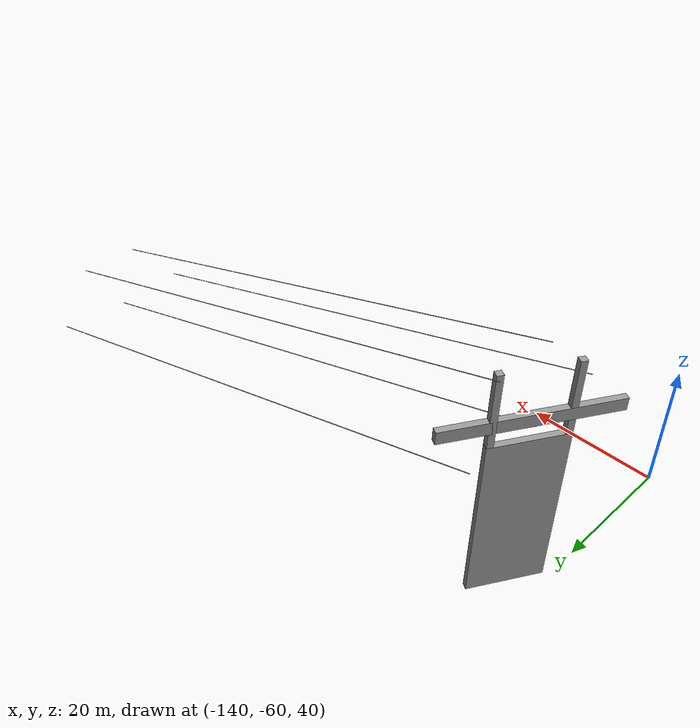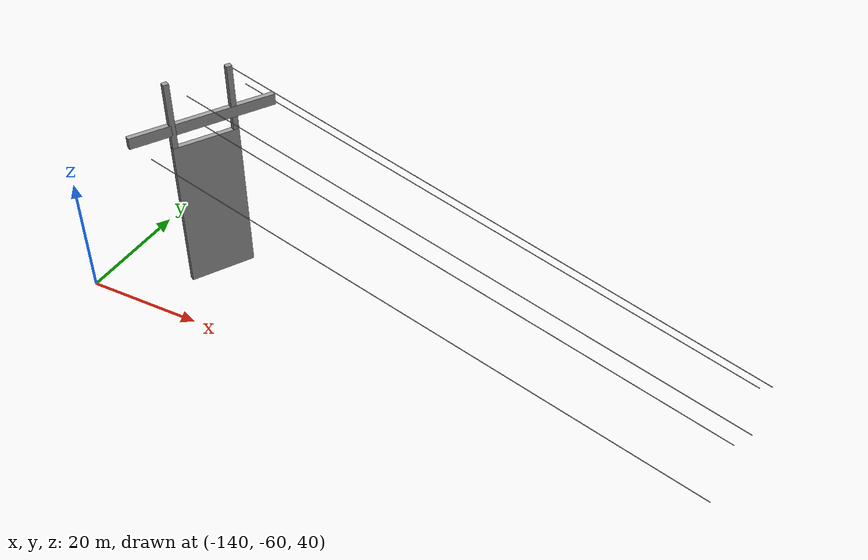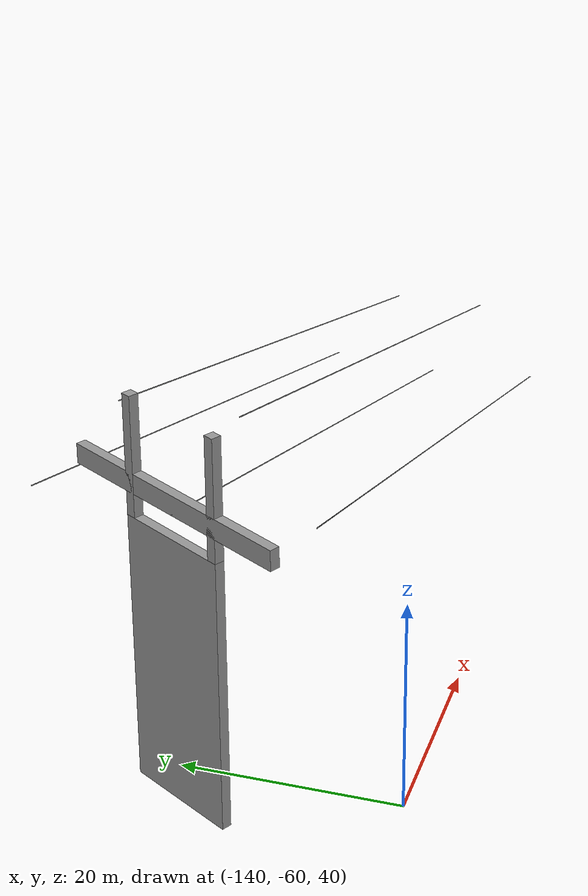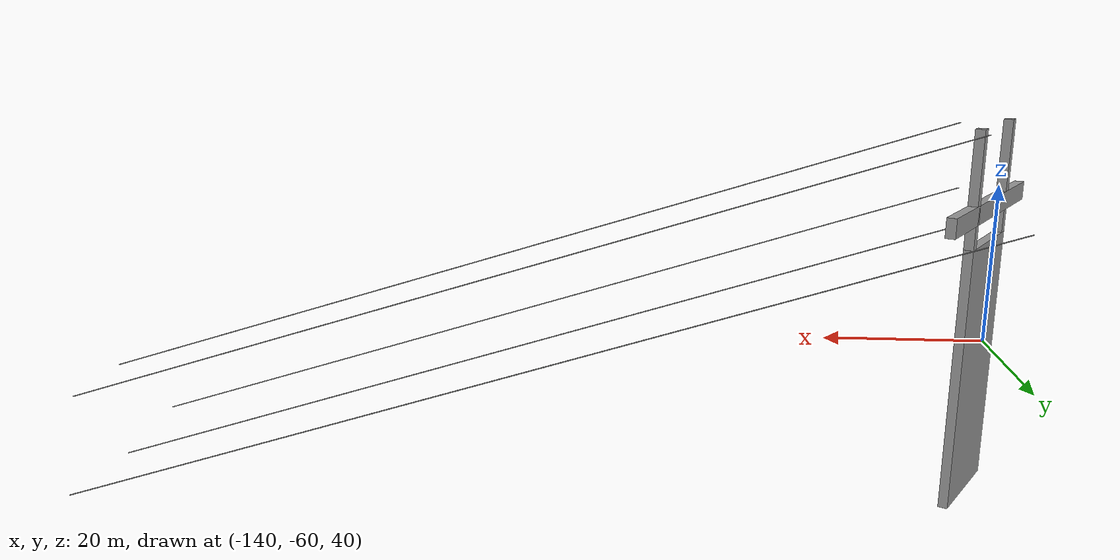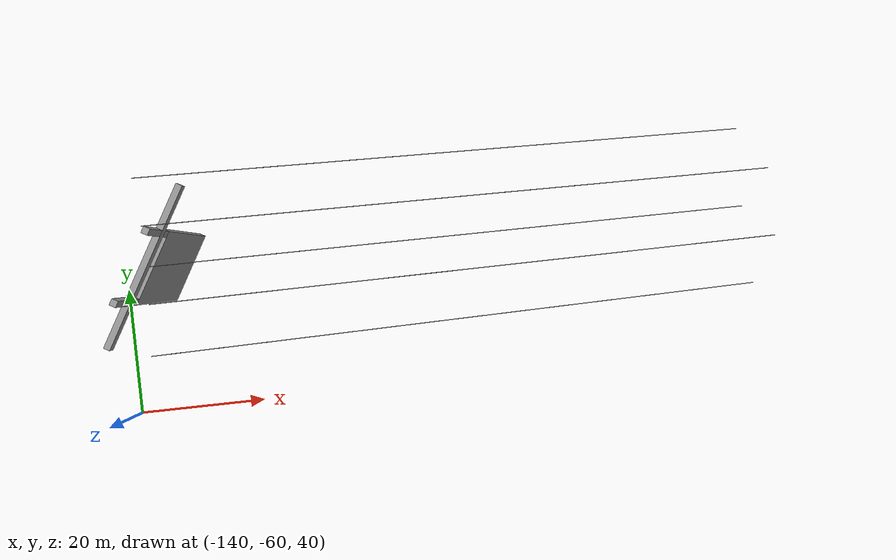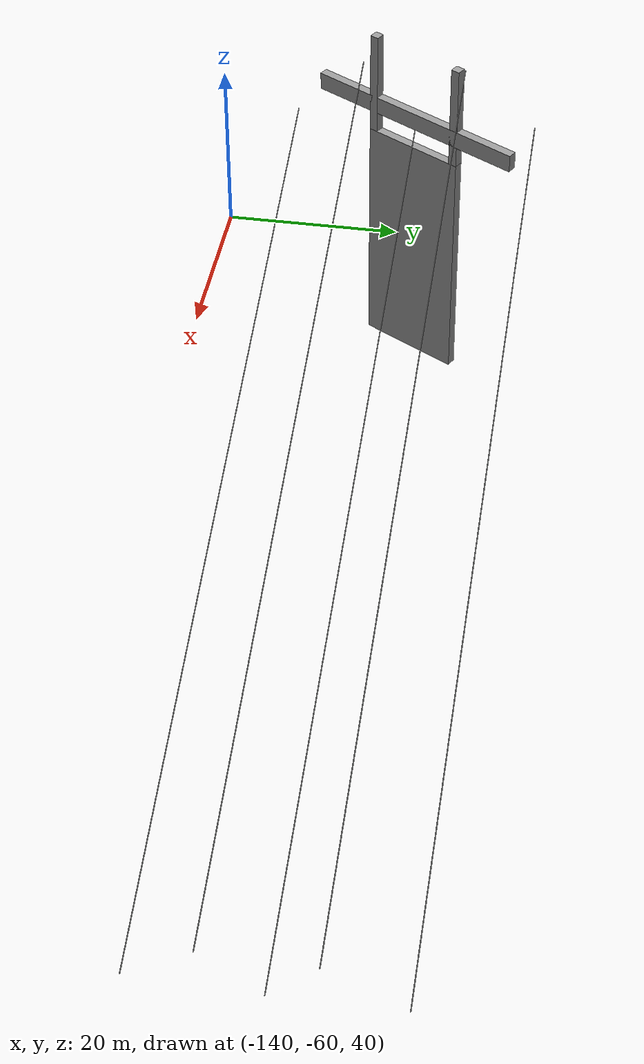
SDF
<sdf version="1.6">
 <world name="vrc_task_1">
  <model name="v4uav_simple_circuit_line_2">
   <link name="link">
    <pose>0 0 0 1.5708 -0 0</pose>
    <inertial>
     <mass>1</mass>
     <pose>0 0 0 1.5708 -0 0</pose>
     <inertia><ixx>1</ixx><ixy>0</ixy><ixz>0</ixz><iyy>1</iyy><iyz>0</iyz><izz>1</izz></inertia>
    </inertial>
    <visual name="ModelPreview_1::link::visual_1">
     <cast_shadows>0</cast_shadows>
     <geometry><cylinder><radius>0.05</radius><length>100</length></cylinder></geometry>
     <material>
      <shader type="pixel"><normal_map>__default__</normal_map></shader>
      <script><name>ModelPreview_33::link::visual_MATERIAL_</name><uri>__default__</uri></script>
      <ambient>0 0 0 1</ambient>
      <diffuse>0 0 0 1</diffuse>
      <specular>0 0 0 1</specular>
      <emissive>0 0 0 1</emissive>
     </material>
     <pose>-5.5 40 0 0 -0 0</pose>
    </visual>
    <visual name="visual">
     <cast_shadows>0</cast_shadows>
     <geometry><cylinder><radius>0.05</radius><length>100</length></cylinder></geometry>
     <material>
      <shader type="pixel"><normal_map>__default__</normal_map></shader>
      <script><name>ModelPreview_33::link::visual_MATERIAL_</name><uri>__default__</uri></script>
      <ambient>0 0 0 1</ambient>
      <diffuse>0 0 0 1</diffuse>
      <specular>0 0 0 1</specular>
      <emissive>0 0 0 1</emissive>
     </material>
     <pose>5.5 40 0 0 -0 0</pose>
    </visual>
    <visual name="ModelPreview_1::link::visual_4">
     <cast_shadows>0</cast_shadows>
     <geometry><cylinder><radius>0.05</radius><length>100</length></cylinder></geometry>
     <material>
      <shader type="pixel"><normal_map>__default__</normal_map></shader>
      <script><name>ModelPreview_33::link::visual_MATERIAL_</name><uri>__default__</uri></script>
      <ambient>0 0 0 1</ambient>
      <diffuse>0 0 0 1</diffuse>
      <specular>0 0 0 1</specular>
      <emissive>0 0 0 1</emissive>
     </material>
     <pose>0 30.64 0 0 -0 0</pose>
    </visual>
    <visual name="ModelPreview_1::link::visual_3">
     <cast_shadows>0</cast_shadows>
     <geometry><cylinder><radius>0.05</radius><length>100</length></cylinder></geometry>
     <material>
      <shader type="pixel"><normal_map>__default__</normal_map></shader>
      <script><name>ModelPreview_33::link::visual_MATERIAL_</name><uri>__default__</uri></script>
      <ambient>0 0 0 1</ambient>
      <diffuse>0 0 0 1</diffuse>
      <specular>0 0 0 1</specular>
      <emissive>0 0 0 1</emissive>
     </material>
     <pose>-13.1 31.42 0 0 -0 0</pose>
    </visual>
    <visual name="ModelPreview_1::link::visual_2">
     <cast_shadows>0</cast_shadows>
     <geometry><cylinder><radius>0.05</radius><length>100</length></cylinder></geometry>
     <material>
      <shader type="pixel"><normal_map>__default__</normal_map></shader>
      <script><name>ModelPreview_33::link::visual_MATERIAL_</name><uri>__default__</uri></script>
      <ambient>0 0 0 1</ambient>
      <diffuse>0 0 0 1</diffuse>
      <specular>0 0 0 1</specular>
      <emissive>0 0 0 1</emissive>
     </material>
     <pose>13.1 31.42 0 0 -0 0</pose>
    </visual>
   </link>
   <static>1</static>
   <pose>-94 -37 16.5 0.3 -1e-06 1.5708</pose>
  </model>
  <model name="v4uav_simple_circuit_tower_6">
   <link name="link">
    <inertial>
     <mass>1</mass>
     <inertia>
      <ixx>0.166667</ixx>
      <ixy>0</ixy>
      <ixz>0</ixz>
      <iyy>0.166667</iyy>
      <iyz>0</iyz>
      <izz>0.166667</izz>
     </inertia>
    </inertial>
    <pose>0 0 14 0 -0 0</pose>
    <visual name="ModelPreview_4::link::visual_3">
     <geometry><box><size>1 1 12</size></box></geometry>
     <material>
      <script><name>Gazebo/Grey</name><uri>file://media/materials/scripts/gazebo.material</uri></script>
      <shader type="pixel"><normal_map>__default__</normal_map></shader>
      <ambient>0.3 0.3 0.3 1</ambient>
      <diffuse>0.7 0.7 0.7 1</diffuse>
      <specular>0.01 0.01 0.01 1</specular>
      <emissive>0 0 0 1</emissive>
     </material>
     <pose>0 -5.5 20 0 -0 0</pose>
    </visual>
    <visual name="ModelPreview_4::link::visual_1">
     <geometry><box><size>1 26.2 2</size></box></geometry>
     <material>
      <script><name>Gazebo/Grey</name><uri>file://media/materials/scripts/gazebo.material</uri></script>
      <shader type="pixel"><normal_map>__default__</normal_map></shader>
      <ambient>0.3 0.3 0.3 1</ambient>
      <diffuse>0.7 0.7 0.7 1</diffuse>
      <specular>0.01 0.01 0.01 1</specular>
      <emissive>0 0 0 1</emissive>
     </material>
     <pose>0 0 17.42 0 -0 0</pose>
    </visual>
    <visual name="ModelPreview_4::link::visual_2">
     <geometry><box><size>1 1 12</size></box></geometry>
     <material>
      <script><name>Gazebo/Grey</name><uri>file://media/materials/scripts/gazebo.material</uri></script>
      <shader type="pixel"><normal_map>__default__</normal_map></shader>
      <ambient>0.3 0.3 0.3 1</ambient>
      <diffuse>0.7 0.7 0.7 1</diffuse>
      <specular>0.01 0.01 0.01 1</specular>
      <emissive>0 0 0 1</emissive>
     </material>
     <pose>0 5.5 20 0 -0 0</pose>
    </visual>
    <visual name="visual">
     <geometry><box><size>1 12 28</size></box></geometry>
     <material>
      <script><name>Gazebo/Grey</name><uri>file://media/materials/scripts/gazebo.material</uri></script>
      <shader type="pixel"><normal_map>__default__</normal_map></shader>
      <ambient>0.3 0.3 0.3 1</ambient>
      <diffuse>0.7 0.7 0.7 1</diffuse>
      <specular>0.01 0.01 0.01 1</specular>
      <emissive>0 0 0 1</emissive>
     </material>
    </visual>
    <collision name="collision">
     <geometry><box><size>1 1 1</size></box></geometry>
     <surface>
      <friction>
       <ode><mu>1</mu><mu2>1</mu2><fdir1>0 0 0</fdir1><slip1>0</slip1><slip2>0</slip2></ode>
       <torsional>
        <coefficient>1</coefficient>
        <patch_radius>0</patch_radius>
        <surface_radius>0</surface_radius>
        <use_patch_radius>1</use_patch_radius>
        <ode><slip>0</slip></ode>
       </torsional>
      </friction>
      <bounce><restitution_coefficient>0</restitution_coefficient><threshold>1e+06</threshold></bounce>
      <contact>
       <collide_without_contact>0</collide_without_contact>
       <collide_without_contact_bitmask>1</collide_without_contact_bitmask>
       <collide_bitmask>1</collide_bitmask>
       <ode>
        <soft_cfm>0</soft_cfm>
        <soft_erp>0.2</soft_erp>
        <kp>1e+13</kp>
        <kd>1</kd>
        <max_vel>0.01</max_vel>
        <min_depth>0</min_depth>
       </ode>
       <bullet>
        <split_impulse>1</split_impulse>
        <split_impulse_penetration_threshold>-0.01</split_impulse_penetration_threshold>
        <soft_cfm>0</soft_cfm>
        <soft_erp>0.2</soft_erp>
        <kp>1e+13</kp>
        <kd>1</kd>
       </bullet>
      </contact>
     </surface>
    </collision>
   </link>
   <static>1</static>
   <pose>-132 -37 30 0 0 -0.5236</pose>
  </model>
 </world>
</sdf>
